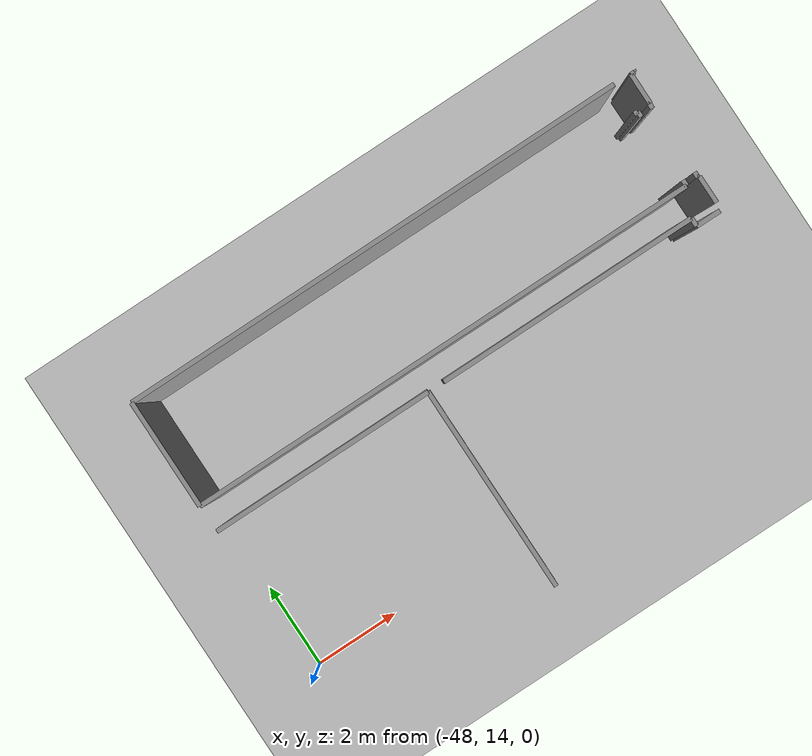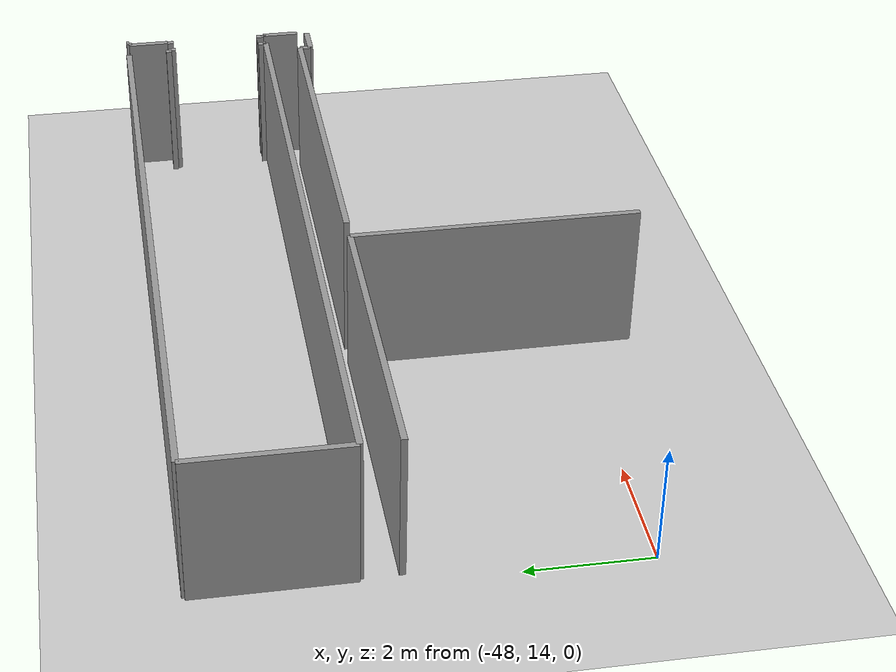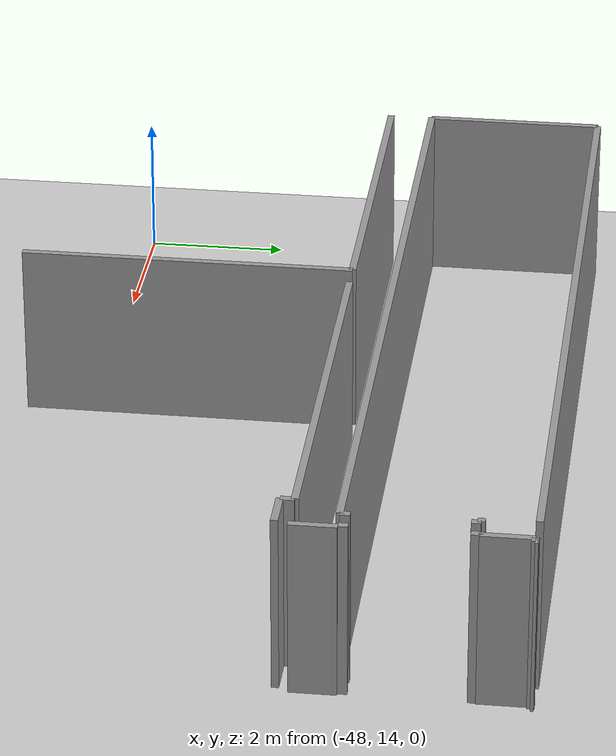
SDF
<sdf version="1.6">
 <world name="default">
  <model name="ground_plane">
   <static>1</static>
   <link name="link">
    <collision name="collision">
     <geometry><plane><normal>0 0 1</normal><size>100 100</size></plane></geometry>
     <surface><friction><ode><mu>100</mu><mu2>50</mu2></ode></friction></surface>
    </collision>
    <visual name="visual">
     <cast_shadows>0</cast_shadows>
     <geometry><plane><normal>0 0 1</normal><size>100 100</size></plane></geometry>
     <material>
      <script><uri>file://media/materials/scripts/gazebo.material</uri><name>Gazebo/Grey</name></script>
     </material>
    </visual>
   </link>
  </model>
  <model name="0510032267_A_40_1_101">
   <static>1</static>
   <link name="Wall_21">
    <collision name="Wall_21_Collision">
     <geometry><box><size>2.50833974037 0.1 2.5</size></box></geometry>
     <pose>1.25416987019 0 1.25 0 0 0</pose>
    </collision>
    <visual name="Wall_21_Visual">
     <pose>1.25416987019 0 1.25 0 0 0</pose>
     <geometry><box><size>2.50833974037 0.1 2.5</size></box></geometry>
     <material>
      <script><uri>file://media/materials/scripts/gazebo.material</uri><name>Gazebo/Grey</name></script>
      <ambient>1 1 1 1</ambient>
     </material>
    </visual>
    <pose>0.00330412570927 -15.3438514668 0 0 0 1.57079632679</pose>
   </link>
   <link name="Wall_22">
    <collision name="Wall_22_Collision">
     <geometry><box><size>11.6936821304 0.1 2.5</size></box></geometry>
     <pose>5.8468410652 0 1.25 0 0 0</pose>
    </collision>
    <visual name="Wall_22_Visual">
     <pose>5.8468410652 0 1.25 0 0 0</pose>
     <geometry><box><size>11.6936821304 0.1 2.5</size></box></geometry>
     <material>
      <script><uri>file://media/materials/scripts/gazebo.material</uri><name>Gazebo/Grey</name></script>
      <ambient>1 1 1 1</ambient>
     </material>
    </visual>
    <pose>0.00330412570927 -12.8355117265 0 0 0 0.0</pose>
   </link>
   <link name="Wall_24">
    <collision name="Wall_24_Collision">
     <geometry><box><size>0.093405092166 0.1 2.5</size></box></geometry>
     <pose>0.046702546083 0 1.25 0 0 0</pose>
    </collision>
    <visual name="Wall_24_Visual">
     <pose>0.046702546083 0 1.25 0 0 0</pose>
     <geometry><box><size>0.093405092166 0.1 2.5</size></box></geometry>
     <material>
      <script><uri>file://media/materials/scripts/gazebo.material</uri><name>Gazebo/Grey</name></script>
      <ambient>1 1 1 1</ambient>
     </material>
    </visual>
    <pose>11.6969862561 -13.5645797724 0 0 0 0.0</pose>
   </link>
   <link name="Wall_25">
    <collision name="Wall_25_Collision">
     <geometry><box><size>0.126319267501 0.1 2.5</size></box></geometry>
     <pose>0.0631596337504 0 1.25 0 0 0</pose>
    </collision>
    <visual name="Wall_25_Visual">
     <pose>0.0631596337504 0 1.25 0 0 0</pose>
     <geometry><box><size>0.126319267501 0.1 2.5</size></box></geometry>
     <material>
      <script><uri>file://media/materials/scripts/gazebo.material</uri><name>Gazebo/Grey</name></script>
      <ambient>1 1 1 1</ambient>
     </material>
    </visual>
    <pose>11.7903913483 -13.5645797724 0 0 0 -1.57079632679</pose>
   </link>
   <link name="Wall_26">
    <collision name="Wall_26_Collision">
     <geometry><box><size>0.137375380451 0.1 2.5</size></box></geometry>
     <pose>0.0686876902255 0 1.25 0 0 0</pose>
    </collision>
    <visual name="Wall_26_Visual">
     <pose>0.0686876902255 0 1.25 0 0 0</pose>
     <geometry><box><size>0.137375380451 0.1 2.5</size></box></geometry>
     <material>
      <script><uri>file://media/materials/scripts/gazebo.material</uri><name>Gazebo/Grey</name></script>
      <ambient>1 1 1 1</ambient>
     </material>
    </visual>
    <pose>11.7903913483 -15.2182946899 0 0 0 -1.57079632679</pose>
   </link>
   <link name="Wall_27">
    <collision name="Wall_27_Collision">
     <geometry><box><size>11.7870931477 0.1 2.5</size></box></geometry>
     <pose>5.89354657383 0 1.25 0 0 0</pose>
    </collision>
    <visual name="Wall_27_Visual">
     <pose>5.89354657383 0 1.25 0 0 0</pose>
     <geometry><box><size>11.7870931477 0.1 2.5</size></box></geometry>
     <material>
      <script><uri>file://media/materials/scripts/gazebo.material</uri><name>Gazebo/Grey</name></script>
      <ambient>1 1 1 1</ambient>
     </material>
    </visual>
    <pose>11.7903913483 -15.3556700703 0 0 0 3.14058998013</pose>
   </link>
   <link name="Wall_29">
    <collision name="Wall_29_Collision">
     <geometry><box><size>5.12596979267 0.1 2.5</size></box></geometry>
     <pose>2.56298489633 0 1.25 0 0 0</pose>
    </collision>
    <visual name="Wall_29_Visual">
     <pose>2.56298489633 0 1.25 0 0 0</pose>
     <geometry><box><size>5.12596979267 0.1 2.5</size></box></geometry>
     <material>
      <script><uri>file://media/materials/scripts/gazebo.material</uri><name>Gazebo/Grey</name></script>
      <ambient>1 1 1 1</ambient>
     </material>
    </visual>
    <pose>0.00559159735415 -15.9599438299 0 0 0 0.0</pose>
   </link>
   <link name="Wall_30">
    <collision name="Wall_30_Collision">
     <geometry><box><size>4.70583750056 0.1 2.5</size></box></geometry>
     <pose>2.35291875028 0 1.25 0 0 0</pose>
    </collision>
    <visual name="Wall_30_Visual">
     <pose>2.35291875028 0 1.25 0 0 0</pose>
     <geometry><box><size>4.70583750056 0.1 2.5</size></box></geometry>
     <material>
      <script><uri>file://media/materials/scripts/gazebo.material</uri><name>Gazebo/Grey</name></script>
      <ambient>1 1 1 1</ambient>
     </material>
    </visual>
    <pose>5.13156139002 -15.9599438299 0 0 0 -1.57079632679</pose>
   </link>
   <link name="Wall_34">
    <collision name="Wall_34_Collision">
     <geometry><box><size>6.00118186035 0.1 2.5</size></box></geometry>
     <pose>3.00059093017 0 1.25 0 0 0</pose>
    </collision>
    <visual name="Wall_34_Visual">
     <pose>3.00059093017 0 1.25 0 0 0</pose>
     <geometry><box><size>6.00118186035 0.1 2.5</size></box></geometry>
     <material>
      <script><uri>file://media/materials/scripts/gazebo.material</uri><name>Gazebo/Grey</name></script>
      <ambient>1 1 1 1</ambient>
     </material>
    </visual>
    <pose>5.50823172088 -15.9599438299 0 0 0 0.0</pose>
   </link>
   <link name="Wall_35">
    <collision name="Wall_35_Collision">
     <geometry><box><size>0.191258045864 0.1 2.5</size></box></geometry>
     <pose>0.0956290229319 0 1.25 0 0 0</pose>
    </collision>
    <visual name="Wall_35_Visual">
     <pose>0.0956290229319 0 1.25 0 0 0</pose>
     <geometry><box><size>0.191258045864 0.1 2.5</size></box></geometry>
     <material>
      <script><uri>file://media/materials/scripts/gazebo.material</uri><name>Gazebo/Grey</name></script>
      <ambient>1 1 1 1</ambient>
     </material>
    </visual>
    <pose>11.5094135812 -15.9599438299 0 0 0 -1.57079632679</pose>
   </link>
   <link name="Wall_36">
    <collision name="Wall_36_Collision">
     <geometry><box><size>0.562336779367 0.1 2.5</size></box></geometry>
     <pose>0.281168389684 0 1.25 0 0 0</pose>
    </collision>
    <visual name="Wall_36_Visual">
     <pose>0.281168389684 0 1.25 0 0 0</pose>
     <geometry><box><size>0.562336779367 0.1 2.5</size></box></geometry>
     <material>
      <script><uri>file://media/materials/scripts/gazebo.material</uri><name>Gazebo/Grey</name></script>
      <ambient>1 1 1 1</ambient>
     </material>
    </visual>
    <pose>11.5094135812 -16.1512018757 0 0 0 0.0</pose>
   </link>
   <link name="Wall_83">
    <collision name="Wall_83_Collision">
     <geometry><box><size>0.634265054423 0.1 2.5</size></box></geometry>
     <pose>0.317132527211 0 1.25 0 0 0</pose>
    </collision>
    <visual name="Wall_83_Visual">
     <pose>0.317132527211 0 1.25 0 0 0</pose>
     <geometry><box><size>0.634265054423 0.1 2.5</size></box></geometry>
     <material>
      <script><uri>file://media/materials/scripts/gazebo.material</uri><name>Gazebo/Grey</name></script>
      <ambient>1 1 1 1</ambient>
     </material>
    </visual>
    <pose>12.1089853157 -15.9764644584 0 0 0 1.57079632679</pose>
   </link>
   <link name="Wall_84">
    <collision name="Wall_84_Collision">
     <geometry><box><size>0.0343120746732 0.1 2.5</size></box></geometry>
     <pose>0.0171560373366 0 1.25 0 0 0</pose>
    </collision>
    <visual name="Wall_84_Visual">
     <pose>0.0171560373366 0 1.25 0 0 0</pose>
     <geometry><box><size>0.0343120746732 0.1 2.5</size></box></geometry>
     <material>
      <script><uri>file://media/materials/scripts/gazebo.material</uri><name>Gazebo/Grey</name></script>
      <ambient>1 1 1 1</ambient>
     </material>
    </visual>
    <pose>12.1089853157 -15.342199404 0 0 0 3.14159265359</pose>
   </link>
   <link name="Wall_85">
    <collision name="Wall_85_Collision">
     <geometry><box><size>0.128733820904 0.1 2.5</size></box></geometry>
     <pose>0.0643669104518 0 1.25 0 0 0</pose>
    </collision>
    <visual name="Wall_85_Visual">
     <pose>0.0643669104518 0 1.25 0 0 0</pose>
     <geometry><box><size>0.128733820904 0.1 2.5</size></box></geometry>
     <material>
      <script><uri>file://media/materials/scripts/gazebo.material</uri><name>Gazebo/Grey</name></script>
      <ambient>1 1 1 1</ambient>
     </material>
    </visual>
    <pose>12.074673241 -15.342199404 0 0 0 1.57079632679</pose>
   </link>
   <link name="Wall_86">
    <collision name="Wall_86_Collision">
     <geometry><box><size>0.108019494342 0.1 2.5</size></box></geometry>
     <pose>0.0540097471708 0 1.25 0 0 0</pose>
    </collision>
    <visual name="Wall_86_Visual">
     <pose>0.0540097471708 0 1.25 0 0 0</pose>
     <geometry><box><size>0.108019494342 0.1 2.5</size></box></geometry>
     <material>
      <script><uri>file://media/materials/scripts/gazebo.material</uri><name>Gazebo/Grey</name></script>
      <ambient>1 1 1 1</ambient>
     </material>
    </visual>
    <pose>12.074673241 -13.6722180215 0 0 0 1.57079632679</pose>
   </link>
   <link name="Wall_87">
    <collision name="Wall_87_Collision">
     <geometry><box><size>0.0166477103044 0.1 2.5</size></box></geometry>
     <pose>0.00832385515221 0 1.25 0 0 0</pose>
    </collision>
    <visual name="Wall_87_Visual">
     <pose>0.00832385515221 0 1.25 0 0 0</pose>
     <geometry><box><size>0.0166477103044 0.1 2.5</size></box></geometry>
     <material>
      <script><uri>file://media/materials/scripts/gazebo.material</uri><name>Gazebo/Grey</name></script>
      <ambient>1 1 1 1</ambient>
     </material>
    </visual>
    <pose>12.074673241 -13.5641985271 0 0 0 0.0</pose>
   </link>
   <link name="Wall_88">
    <collision name="Wall_88_Collision">
     <geometry><box><size>0.705049593656 0.1 2.5</size></box></geometry>
     <pose>0.352524796828 0 1.25 0 0 0</pose>
    </collision>
    <visual name="Wall_88_Visual">
     <pose>0.352524796828 0 1.25 0 0 0</pose>
     <geometry><box><size>0.705049593656 0.1 2.5</size></box></geometry>
     <material>
      <script><uri>file://media/materials/scripts/gazebo.material</uri><name>Gazebo/Grey</name></script>
      <ambient>1 1 1 1</ambient>
     </material>
    </visual>
    <pose>12.0913209513 -13.5641985271 0 0 0 1.57079632679</pose>
   </link>
   <link name="Wall_89">
    <collision name="Wall_89_Collision">
     <geometry><box><size>0.0841281238285 0.1 2.5</size></box></geometry>
     <pose>0.0420640619142 0 1.25 0 0 0</pose>
    </collision>
    <visual name="Wall_89_Visual">
     <pose>0.0420640619142 0 1.25 0 0 0</pose>
     <geometry><box><size>0.0841281238285 0.1 2.5</size></box></geometry>
     <material>
      <script><uri>file://media/materials/scripts/gazebo.material</uri><name>Gazebo/Grey</name></script>
      <ambient>1 1 1 1</ambient>
     </material>
    </visual>
    <pose>12.0913209513 -12.8591489335 0 0 0 0.0</pose>
   </link>
   <link name="Wall_90">
    <collision name="Wall_90_Collision">
     <geometry><box><size>0.043970288285 0.1 2.5</size></box></geometry>
     <pose>0.0219851441425 0 1.25 0 0 0</pose>
    </collision>
    <visual name="Wall_90_Visual">
     <pose>0.0219851441425 0 1.25 0 0 0</pose>
     <geometry><box><size>0.043970288285 0.1 2.5</size></box></geometry>
     <material>
      <script><uri>file://media/materials/scripts/gazebo.material</uri><name>Gazebo/Grey</name></script>
      <ambient>1 1 1 1</ambient>
     </material>
    </visual>
    <pose>12.1754490752 -12.8591489335 0 0 0 1.57079632679</pose>
   </link>
   <pose>-47.8 33.6752466975 0 0 0 0</pose>
  </model>
 </world>
</sdf>
